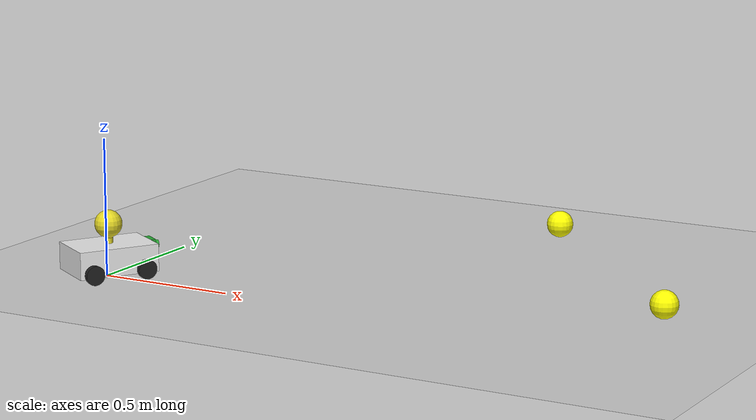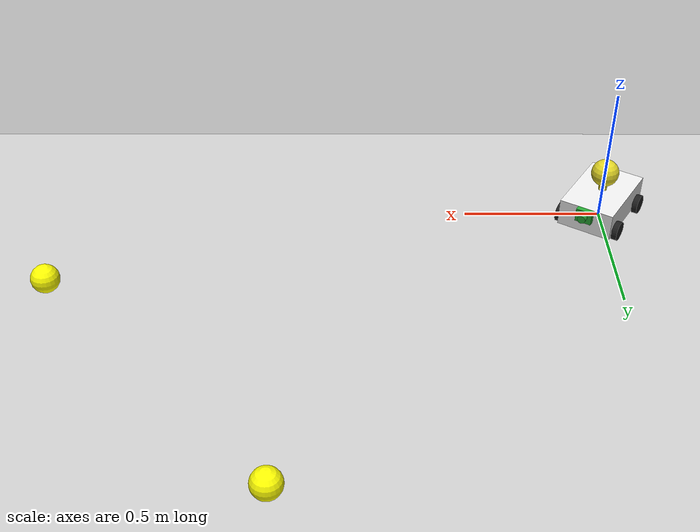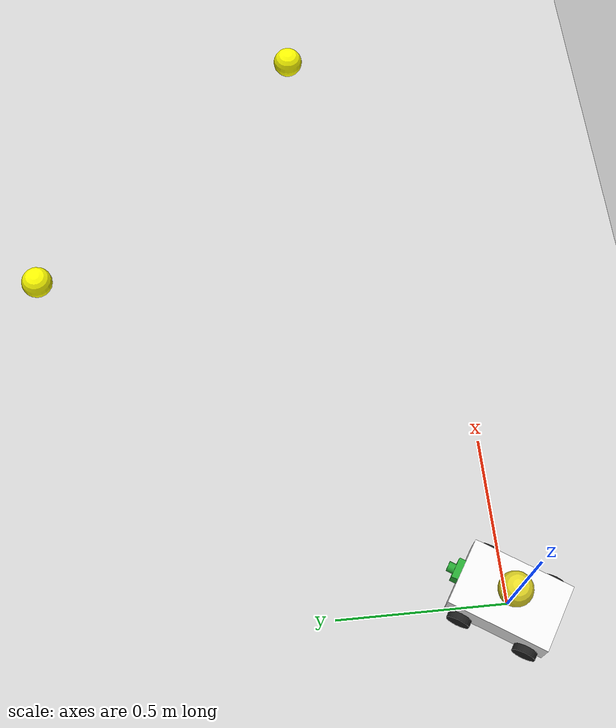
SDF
<sdf version="1.7">
 <world name="default">
  <light name="sun" type="directional">
   <pose>0 0 10 0 -0 0</pose>
   <diffuse>0.8 0.8 0.8 1</diffuse>
   <specular>0.2 0.2 0.2 1</specular>
   <attenuation>
    <range>1000</range>
    <constant>0.9</constant>
    <linear>0.01</linear>
    <quadratic>0.001</quadratic>
   </attenuation>
   <direction>-0.5 0.1 -0.9</direction>
   <spot><inner_angle>0</inner_angle><outer_angle>0</outer_angle><falloff>0</falloff></spot>
  </light>
  <model name="ground_plane">
   <static>1</static>
   <link name="link">
    <collision name="collision">
     <geometry><plane><normal>0 0 1</normal><size>100 100</size></plane></geometry>
     <surface>
      <contact><collide_bitmask>65535</collide_bitmask></contact>
      <friction><ode><mu>100</mu><mu2>50</mu2></ode></friction>
     </surface>
    </collision>
    <visual name="visual">
     <cast_shadows>0</cast_shadows>
     <geometry><plane><normal>0 0 1</normal><size>100 100</size></plane></geometry>
     <material>
      <script><uri>file://media/materials/scripts/gazebo.material</uri><name>Gazebo/Grey</name></script>
     </material>
    </visual>
   </link>
  </model>
  <gravity>0 0 -9.8</gravity>
  <magnetic_field>6e-06 2.3e-05 -4.2e-05</magnetic_field>
  <atmosphere type="adiabatic"/>
  <physics type="ode">
   <max_step_size>0.001</max_step_size>
   <real_time_factor>1</real_time_factor>
   <real_time_update_rate>1000</real_time_update_rate>
  </physics>
  <scene><ambient>0.4 0.4 0.4 1</ambient><background>0.7 0.7 0.7 1</background><shadows>1</shadows></scene>
  <audio><device>default</device></audio>
  <spherical_coordinates>
   <surface_model>EARTH_WGS84</surface_model>
   <latitude_deg>0</latitude_deg>
   <longitude_deg>0</longitude_deg>
   <elevation>0</elevation>
   <heading_deg>0</heading_deg>
  </spherical_coordinates>
  <model name="robot_1">
   <link name="robot_1_base_link">
    <inertial>
     <pose>-0.008696 0 0.084565 0 -0 0</pose>
     <mass>2.3</mass>
     <inertia>
      <ixx>0.0212836</ixx>
      <ixy>0</ixy>
      <ixz>-0.000691304</ixz>
      <iyy>0.00785365</iyy>
      <iyz>1.0842e-19</iyz>
      <izz>0.0160521</izz>
     </inertia>
    </inertial>
    <collision name="robot_1_base_link_fixed_joint_lump__robot_1_chassis_collision">
     <pose>0 0 0.085 0 -0 0</pose>
     <geometry><box><size>0.3 0.2 0.1</size></box></geometry>
    </collision>
    <collision name="robot_1_base_link_fixed_joint_lump__robot_1_left_back_wheel_collision_1">
     <pose>-0.1 0.11 0.05 -1.5708 0 0</pose>
     <geometry><cylinder><length>0.02</length><radius>0.035</radius></cylinder></geometry>
     <surface><friction><ode><mu>0.0001</mu><mu2>0.0001</mu2></ode></friction></surface>
    </collision>
    <collision name="robot_1_base_link_fixed_joint_lump__robot_1_marker_collision_2">
     <pose>0 0 0.145 0 -0 0</pose>
     <geometry><sphere><radius>0.05</radius></sphere></geometry>
    </collision>
    <collision name="robot_1_base_link_fixed_joint_lump__robot_1_right_back_wheel_collision_3">
     <pose>-0.1 -0.11 0.05 -1.5708 0 0</pose>
     <geometry><cylinder><length>0.02</length><radius>0.035</radius></cylinder></geometry>
     <surface><friction><ode><mu>0.0001</mu><mu2>0.0001</mu2></ode></friction></surface>
    </collision>
    <visual name="robot_1_base_link_fixed_joint_lump__robot_1_chassis_visual">
     <pose>0 0 0.085 0 -0 0</pose>
     <geometry><box><size>0.3 0.2 0.1</size></box></geometry>
     <material>
      <script><name>Gazebo/White</name><uri>file://media/materials/scripts/gazebo.material</uri></script>
     </material>
    </visual>
    <visual name="robot_1_base_link_fixed_joint_lump__robot_1_camera_visual_1">
     <pose>0.16 0 0.11 0 -0 0</pose>
     <geometry><box><size>0.02 0.06 0.05</size></box></geometry>
     <material>
      <script><name>Gazebo/Green</name><uri>file://media/materials/scripts/gazebo.material</uri></script>
     </material>
    </visual>
    <visual name="robot_1_base_link_fixed_joint_lump__robot_1_camera_visual_2">
     <pose>0.17 0 0.11 3.14159 -1.57079 3.14159</pose>
     <geometry><cylinder><length>0.04</length><radius>0.015</radius></cylinder></geometry>
     <material>
      <script><name>Gazebo/Green</name><uri>file://media/materials/scripts/gazebo.material</uri></script>
     </material>
    </visual>
    <visual name="robot_1_base_link_fixed_joint_lump__robot_1_left_back_wheel_visual_3">
     <pose>-0.1 0.11 0.05 -1.5708 0 0</pose>
     <geometry><cylinder><length>0.02</length><radius>0.035</radius></cylinder></geometry>
     <material>
      <script><name>Gazebo/Black</name><uri>file://media/materials/scripts/gazebo.material</uri></script>
     </material>
    </visual>
    <visual name="robot_1_base_link_fixed_joint_lump__robot_1_marker_visual_4">
     <pose>0 0 0.145 0 -0 0</pose>
     <geometry><cylinder><length>0.02</length><radius>0.015</radius></cylinder></geometry>
     <material>
      <script><name>Gazebo/Yellow</name><uri>file://media/materials/scripts/gazebo.material</uri></script>
     </material>
    </visual>
    <visual name="robot_1_base_link_fixed_joint_lump__robot_1_marker_visual_5">
     <pose>0 0 0.205 0 -0 0</pose>
     <geometry><sphere><radius>0.05</radius></sphere></geometry>
     <material>
      <script><name>Gazebo/Yellow</name><uri>file://media/materials/scripts/gazebo.material</uri></script>
     </material>
    </visual>
    <visual name="robot_1_base_link_fixed_joint_lump__robot_1_right_back_wheel_visual_6">
     <pose>-0.1 -0.11 0.05 -1.5708 0 0</pose>
     <geometry><cylinder><length>0.02</length><radius>0.035</radius></cylinder></geometry>
     <material>
      <script><name>Gazebo/Black</name><uri>file://media/materials/scripts/gazebo.material</uri></script>
     </material>
    </visual>
    <sensor name="robot_1_camera" type="camera">
     <visualize>1</visualize>
     <update_rate>10</update_rate>
     <camera>
      <horizontal_fov>1.089</horizontal_fov>
      <image><format>R8G8B8</format><width>640</width><height>480</height></image>
      <clip><near>0.05</near><far>8</far></clip>
     </camera>
     <plugin name="camera_controller" filename="libgazebo_ros_camera.so">
      <ros><namespace>robot_1</namespace></ros>
      <frame_name>robot_1_camera_optical</frame_name>
     </plugin>
     <pose>0.16 0 0.11 0 -0 0</pose>
    </sensor>
   </link>
   <joint name="robot_1_left_front_wheel_joint" type="revolute">
    <pose relative_to="robot_1_base_link">0.1 0.11 0.05 -1.5708 0 0</pose>
    <parent>robot_1_base_link</parent>
    <child>robot_1_left_front_wheel</child>
    <axis>
     <xyz>0 0 1</xyz>
     <limit><lower>-1e+16</lower><upper>1e+16</upper></limit>
     <dynamics><spring_reference>0</spring_reference><spring_stiffness>0</spring_stiffness></dynamics>
    </axis>
   </joint>
   <link name="robot_1_left_front_wheel">
    <pose relative_to="robot_1_left_front_wheel_joint">0 0 0 0 -0 0</pose>
    <inertial>
     <mass>0.1</mass>
     <inertia><ixx>0.000253</ixx><ixy>0</ixy><ixz>0</ixz><iyy>0.000253</iyy><iyz>0</iyz><izz>0.0005</izz></inertia>
    </inertial>
    <collision name="robot_1_left_front_wheel_collision">
     <geometry><cylinder><length>0.02</length><radius>0.035</radius></cylinder></geometry>
    </collision>
    <visual name="robot_1_left_front_wheel_visual">
     <geometry><cylinder><length>0.02</length><radius>0.035</radius></cylinder></geometry>
     <material>
      <script><name>Gazebo/Black</name><uri>file://media/materials/scripts/gazebo.material</uri></script>
     </material>
    </visual>
   </link>
   <joint name="robot_1_right_front_wheel_joint" type="revolute">
    <pose relative_to="robot_1_base_link">0.1 -0.11 0.05 -1.5708 0 0</pose>
    <parent>robot_1_base_link</parent>
    <child>robot_1_right_front_wheel</child>
    <axis>
     <xyz>0 0 1</xyz>
     <limit><lower>-1e+16</lower><upper>1e+16</upper></limit>
     <dynamics><spring_reference>0</spring_reference><spring_stiffness>0</spring_stiffness></dynamics>
    </axis>
   </joint>
   <link name="robot_1_right_front_wheel">
    <pose relative_to="robot_1_right_front_wheel_joint">0 0 0 0 -0 0</pose>
    <inertial>
     <mass>0.1</mass>
     <inertia><ixx>0.000253</ixx><ixy>0</ixy><ixz>0</ixz><iyy>0.000253</iyy><iyz>0</iyz><izz>0.0005</izz></inertia>
    </inertial>
    <collision name="robot_1_right_front_wheel_collision">
     <geometry><cylinder><length>0.02</length><radius>0.035</radius></cylinder></geometry>
    </collision>
    <visual name="robot_1_right_front_wheel_visual">
     <geometry><cylinder><length>0.02</length><radius>0.035</radius></cylinder></geometry>
     <material>
      <script><name>Gazebo/Black</name><uri>file://media/materials/scripts/gazebo.material</uri></script>
     </material>
    </visual>
   </link>
   <static>0</static>
   <plugin name="gazebo_ros2_control" filename="libgazebo_ros2_control.so">
    <ros><namespace>robot_1</namespace></ros>
    <parameters>/home/tand/second_ros2_ws/install/multi_bear_form/share/multi_bear_form/config/robot_1_ros2_controller.yaml</parameters>
    <robot_param_node>/robot_1/robot_state_publisher</robot_param_node>
   </plugin>
   <pose>0.002561 0.00889 -0.015008 0 8.3e-05 1.00468</pose>
  </model>
  <model name="tennis_ball">
   <link name="link">
    <inertial>
     <mass>1</mass>
     <inertia><ixx>0.1</ixx><ixy>0</ixy><ixz>0</ixz><iyy>0.1</iyy><iyz>0</iyz><izz>0.1</izz></inertia>
    </inertial>
    <visual name="visual">
     <geometry><sphere><radius>0.05</radius></sphere></geometry>
     <material>
      <script><name>Gazebo/Grey</name><uri>file://media/materials/scripts/gazebo.material</uri></script>
      <shader type="pixel"><normal_map>__default__</normal_map></shader>
      <ambient>1 1 0 1</ambient>
      <diffuse>0.7 0.7 0.7 1</diffuse>
      <specular>0.01 0.01 0.01 1</specular>
      <emissive>0 0 0 1</emissive>
     </material>
    </visual>
    <collision name="collision">
     <geometry><sphere><radius>0.05</radius></sphere></geometry>
     <surface>
      <friction>
       <ode><mu>1</mu><mu2>1</mu2><fdir1>0 0 0</fdir1><slip1>0</slip1><slip2>0</slip2></ode>
       <torsional>
        <coefficient>1</coefficient>
        <patch_radius>0</patch_radius>
        <surface_radius>0</surface_radius>
        <use_patch_radius>1</use_patch_radius>
        <ode><slip>0</slip></ode>
       </torsional>
      </friction>
      <bounce><restitution_coefficient>0</restitution_coefficient><threshold>1e+06</threshold></bounce>
      <contact>
       <collide_without_contact>0</collide_without_contact>
       <collide_without_contact_bitmask>1</collide_without_contact_bitmask>
       <collide_bitmask>1</collide_bitmask>
       <ode>
        <soft_cfm>0</soft_cfm>
        <soft_erp>0.2</soft_erp>
        <kp>1e+13</kp>
        <kd>1</kd>
        <max_vel>0.01</max_vel>
        <min_depth>0</min_depth>
       </ode>
       <bullet>
        <split_impulse>1</split_impulse>
        <split_impulse_penetration_threshold>-0.01</split_impulse_penetration_threshold>
        <soft_cfm>0</soft_cfm>
        <soft_erp>0.2</soft_erp>
        <kp>1e+13</kp>
        <kd>1</kd>
       </bullet>
      </contact>
     </surface>
    </collision>
   </link>
   <static>0</static>
   <pose>1.15716 1.34354 0.05 0 -0 0</pose>
  </model>
  <model name="tennis_ball_0">
   <link name="link">
    <inertial>
     <mass>1</mass>
     <inertia><ixx>0.1</ixx><ixy>0</ixy><ixz>0</ixz><iyy>0.1</iyy><iyz>0</iyz><izz>0.1</izz></inertia>
    </inertial>
    <visual name="visual">
     <geometry><sphere><radius>0.05</radius></sphere></geometry>
     <material>
      <script><name>Gazebo/Grey</name><uri>file://media/materials/scripts/gazebo.material</uri></script>
      <shader type="pixel"><normal_map>__default__</normal_map></shader>
      <ambient>1 1 0 1</ambient>
      <diffuse>0.7 0.7 0.7 1</diffuse>
      <specular>0.01 0.01 0.01 1</specular>
      <emissive>0 0 0 1</emissive>
     </material>
    </visual>
    <collision name="collision">
     <geometry><sphere><radius>0.05</radius></sphere></geometry>
     <surface>
      <friction>
       <ode><mu>1</mu><mu2>1</mu2><fdir1>0 0 0</fdir1><slip1>0</slip1><slip2>0</slip2></ode>
       <torsional>
        <coefficient>1</coefficient>
        <patch_radius>0</patch_radius>
        <surface_radius>0</surface_radius>
        <use_patch_radius>1</use_patch_radius>
        <ode><slip>0</slip></ode>
       </torsional>
      </friction>
      <bounce><restitution_coefficient>0</restitution_coefficient><threshold>1e+06</threshold></bounce>
      <contact>
       <collide_without_contact>0</collide_without_contact>
       <collide_without_contact_bitmask>1</collide_without_contact_bitmask>
       <collide_bitmask>1</collide_bitmask>
       <ode>
        <soft_cfm>0</soft_cfm>
        <soft_erp>0.2</soft_erp>
        <kp>1e+13</kp>
        <kd>1</kd>
        <max_vel>0.01</max_vel>
        <min_depth>0</min_depth>
       </ode>
       <bullet>
        <split_impulse>1</split_impulse>
        <split_impulse_penetration_threshold>-0.01</split_impulse_penetration_threshold>
        <soft_cfm>0</soft_cfm>
        <soft_erp>0.2</soft_erp>
        <kp>1e+13</kp>
        <kd>1</kd>
       </bullet>
      </contact>
     </surface>
    </collision>
   </link>
   <static>0</static>
   <pose>1.96355 0.447241 0.05 0 -0 0</pose>
  </model>
 </world>
</sdf>
